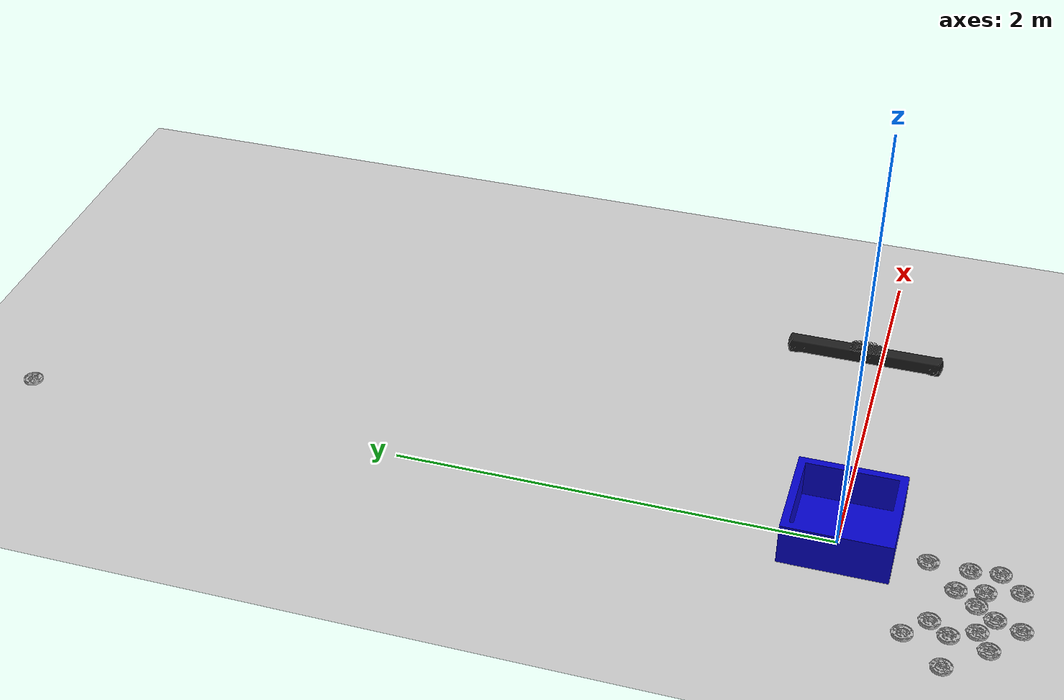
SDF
<sdf version="1.7">
 <world name="default">
  <light name="sun" type="directional">
   <pose>0 0 10 0 -0 0</pose>
   <diffuse>0.8 0.8 0.8 1</diffuse>
   <specular>0.2 0.2 0.2 1</specular>
   <attenuation>
    <range>1000</range>
    <constant>0.9</constant>
    <linear>0.01</linear>
    <quadratic>0.001</quadratic>
   </attenuation>
   <direction>-0.5 0.1 -0.9</direction>
   <spot><inner_angle>0</inner_angle><outer_angle>0</outer_angle><falloff>0</falloff></spot>
  </light>
  <model name="ground_plane">
   <static>1</static>
   <link name="link">
    <collision name="collision">
     <geometry><plane><normal>0 0 1</normal><size>100 100</size></plane></geometry>
     <surface><friction><ode><mu>100</mu><mu2>50</mu2></ode></friction></surface>
    </collision>
    <visual name="visual">
     <cast_shadows>0</cast_shadows>
     <geometry><plane><normal>0 0 1</normal><size>100 100</size></plane></geometry>
     <material>
      <script><uri>file://media/materials/scripts/gazebo.material</uri><name>Gazebo/Grey</name></script>
     </material>
    </visual>
   </link>
  </model>
  <gravity>0 0 -9.8</gravity>
  <magnetic_field>6e-06 2.3e-05 -4.2e-05</magnetic_field>
  <atmosphere type="adiabatic"/>
  <physics type="ode">
   <max_step_size>0.001</max_step_size>
   <real_time_factor>1</real_time_factor>
   <real_time_update_rate>1000</real_time_update_rate>
  </physics>
  <scene><ambient>0.4 0.4 0.4 1</ambient><background>0.7 0.7 0.7 1</background><shadows>1</shadows></scene>
  <spherical_coordinates>
   <surface_model>EARTH_WGS84</surface_model>
   <latitude_deg>0</latitude_deg>
   <longitude_deg>0</longitude_deg>
   <elevation>0</elevation>
   <heading_deg>0</heading_deg>
  </spherical_coordinates>
  <model name="HV8">
   <pose>0.028188 3.84665 0 0 -0 0</pose>
   <static>1</static>
   <link name="HV8">
    <inertial>
     <mass>0.2</mass>
     <inertia><ixx>0.0005</ixx><ixy>0</ixy><ixz>0</ixz><iyy>0.0005</iyy><iyz>0</iyz><izz>0.0005</izz></inertia>
    </inertial>
    <collision name="collishin">
     <geometry><mesh><uri>model://HV8/meshes/HV8_1.stl</uri></mesh></geometry>
    </collision>
    <visual name="visual"><geometry><mesh><uri>model://HV8/meshes/HV8_1.stl</uri></mesh></geometry></visual>
   </link>
  </model>
  <model name="phoxi_camera">
   <joint name="photoneo_center_joint" type="fixed">
    <pose relative_to="__model__">0 0 1 3.14159 1.57079 3.14159</pose>
    <parent>world</parent>
    <child>photoneo_center</child>
   </joint>
   <link name="photoneo_center">
    <pose relative_to="photoneo_center_joint">0 0 0 0 -0 0</pose>
    <inertial>
     <mass>1.1</mass>
     <inertia><ixx>1</ixx><ixy>0</ixy><ixz>0</ixz><iyy>1</iyy><iyz>0</iyz><izz>1</izz></inertia>
    </inertial>
    <collision name="photoneo_center_collision">
     <pose>0 0 0 1.5708 -0 -3.14159</pose>
     <geometry>
      <mesh>
       <scale>0.001 0.001 0.001</scale>
       <uri>/home/ericlab/ros_package/denso_ws/src/denso_run/denso_pkgs/denso_common/denso_descriptions/phoxi_camera_description/meshes/collision/PhoXi_L.c.STL</uri>
      </mesh>
     </geometry>
     <surface><friction><ode><mu>0.2</mu><mu2>0.2</mu2></ode></friction></surface>
    </collision>
    <visual name="photoneo_center_visual">
     <pose>0 0 0 1.5708 -0 -3.14159</pose>
     <geometry>
      <mesh>
       <scale>0.001 0.001 0.001</scale>
       <uri>/home/ericlab/ros_package/denso_ws/src/denso_run/denso_pkgs/denso_common/denso_descriptions/phoxi_camera_description/meshes/visual/PhoXi_L.f.STL</uri>
      </mesh>
     </geometry>
     <material>
      <script><name>Gazebo/Black</name><uri>file://media/materials/scripts/gazebo.material</uri></script>
     </material>
    </visual>
    <sensor name="photoneo_center_sensor" type="depth">
     <always_on>1</always_on>
     <update_rate>30</update_rate>
     <camera>
      <horizontal_fov>1.46782</horizontal_fov>
      <image><format>R8G8B8</format><width>2064</width><height>1544</height></image>
      <clip><near>0.05</near><far>4.5</far></clip>
      <noise><type>gaussian</type><mean>0</mean><stddev>0.005</stddev></noise>
     </camera>
     <plugin name="photoneo_center_sensor_controller" filename="libgazebo_ros_openni_kinect.so">
      <cameraName>photoneo_center/sensor</cameraName>
      <alwaysOn>1</alwaysOn>
      <updateRate>30</updateRate>
      <imageTopicName>image_color</imageTopicName>
      <depthImageTopicName>image_depth</depthImageTopicName>
      <pointCloudTopicName>points</pointCloudTopicName>
      <cameraInfoTopicName>camera_info</cameraInfoTopicName>
      <depthImageCameraInfoTopicName>camera_info</depthImageCameraInfoTopicName>
      <frameName>photoneo_center_optical_frame</frameName>
      <baseline>0.1</baseline>
      <distortion_k1>-0.11862627596824302</distortion_k1>
      <distortion_k2>0.1330449495758574</distortion_k2>
      <distortion_k3>0.0</distortion_k3>
      <distortion_t1>0.0012978747886444077</distortion_t1>
      <distortion_t2>-0.002273816413316873</distortion_t2>
      <focalLength>2293.3324879074394</focalLength>
      <hackBaseline>0.0</hackBaseline>
      <Cx>1041.4935095434566</Cx>
      <Cy>857.6330096952366</Cy>
      <pointCloudCutoff>0.05</pointCloudCutoff>
      <pointCloudCutoffMax>4.5</pointCloudCutoffMax>
      <robotNamespace>/</robotNamespace>
     </plugin>
    </sensor>
    <sensor name="photoneo_center_camera" type="camera">
     <always_on>1</always_on>
     <update_rate>30</update_rate>
     <camera>
      <pose>0.035 -0.275 0.0168 0 -0 0.164934</pose>
      <horizontal_fov>1.46782</horizontal_fov>
      <image><format>R8G8B8</format><width>752</width><height>480</height></image>
      <clip><near>0.05</near><far>4.5</far></clip>
      <noise><type>gaussian</type><mean>0</mean><stddev>0.005</stddev></noise>
     </camera>
     <plugin name="photoneo_center_camera_controller" filename="libgazebo_ros_camera.so">
      <cameraName>photoneo_center/camera</cameraName>
      <alwaysOn>1</alwaysOn>
      <updateRate>30</updateRate>
      <imageTopicName>image_color</imageTopicName>
      <cameraInfoTopicName>camera_info</cameraInfoTopicName>
      <frameName>photoneo_center_camera_frame</frameName>
      <baseline>0.1</baseline>
      <distortion_k1>-0.11862627596824302</distortion_k1>
      <distortion_k2>0.1330449495758574</distortion_k2>
      <distortion_k3>0.0</distortion_k3>
      <distortion_t1>0.0012978747886444077</distortion_t1>
      <distortion_t2>-0.002273816413316873</distortion_t2>
      <focalLength>2293.3324879074394</focalLength>
      <hackBaseline>0.07</hackBaseline>
      <Cx>1041.4935095434566</Cx>
      <Cy>857.6330096952366</Cy>
      <pointCloudCutoff>0.05</pointCloudCutoff>
      <pointCloudCutoffMax>4.5</pointCloudCutoffMax>
      <robotNamespace>/</robotNamespace>
     </plugin>
    </sensor>
   </link>
  </model>
  <model name="object_box">
   <pose>0.047227 -0.005648 0 0 -0 0</pose>
   <static>1</static>
   <link name="object_box">
    <inertial>
     <mass>0.2</mass>
     <inertia><ixx>0.0005</ixx><ixy>0</ixy><ixz>0</ixz><iyy>0.0005</iyy><iyz>0</iyz><izz>0.0005</izz></inertia>
    </inertial>
    <collision name="collision">
     <geometry><mesh><uri>model://object_box/meshed/object_box_kai.dae</uri></mesh></geometry>
    </collision>
    <visual name="visual">
     <geometry><mesh><uri>model://object_box/meshed/object_box_kai.dae</uri></mesh></geometry>
    </visual>
   </link>
  </model>
  <model name="HV8_0">
   <pose>-0.010831 -0.387688 1e-06 -5.8e-05 -1.4e-05 2.4e-05</pose>
   <static>0</static>
   <link name="HV8">
    <inertial>
     <mass>0.2</mass>
     <inertia><ixx>0.0005</ixx><ixy>0</ixy><ixz>0</ixz><iyy>0.0005</iyy><iyz>0</iyz><izz>0.0005</izz></inertia>
    </inertial>
    <collision name="collishin">
     <geometry><mesh><uri>model://HV8/meshes/HV8_1.stl</uri></mesh></geometry>
    </collision>
    <visual name="visual"><geometry><mesh><uri>model://HV8/meshes/HV8_1.stl</uri></mesh></geometry></visual>
   </link>
  </model>
  <model name="HV8_1">
   <pose>-0.376961 -0.629301 2e-06 -4.2e-05 -4.1e-05 2.1e-05</pose>
   <static>0</static>
   <link name="HV8">
    <inertial>
     <mass>0.2</mass>
     <inertia><ixx>0.0005</ixx><ixy>0</ixy><ixz>0</ixz><iyy>0.0005</iyy><iyz>0</iyz><izz>0.0005</izz></inertia>
    </inertial>
    <collision name="collishin">
     <geometry><mesh><uri>model://HV8/meshes/HV8_1.stl</uri></mesh></geometry>
    </collision>
    <visual name="visual"><geometry><mesh><uri>model://HV8/meshes/HV8_1.stl</uri></mesh></geometry></visual>
   </link>
  </model>
  <model name="HV8_2">
   <pose>-0.131177 -0.637828 -0 1e-06 1.6e-05 2e-05</pose>
   <static>0</static>
   <link name="HV8">
    <inertial>
     <mass>0.2</mass>
     <inertia><ixx>0.0005</ixx><ixy>0</ixy><ixz>0</ixz><iyy>0.0005</iyy><iyz>0</iyz><izz>0.0005</izz></inertia>
    </inertial>
    <collision name="collishin">
     <geometry><mesh><uri>model://HV8/meshes/HV8_1.stl</uri></mesh></geometry>
    </collision>
    <visual name="visual"><geometry><mesh><uri>model://HV8/meshes/HV8_1.stl</uri></mesh></geometry></visual>
   </link>
  </model>
  <model name="HV8_3">
   <pose>-0.150112 -0.518257 -3e-06 -1.8e-05 7.7e-05 1.8e-05</pose>
   <static>0</static>
   <link name="HV8">
    <inertial>
     <mass>0.2</mass>
     <inertia><ixx>0.0005</ixx><ixy>0</ixy><ixz>0</ixz><iyy>0.0005</iyy><iyz>0</iyz><izz>0.0005</izz></inertia>
    </inertial>
    <collision name="collishin">
     <geometry><mesh><uri>model://HV8/meshes/HV8_1.stl</uri></mesh></geometry>
    </collision>
    <visual name="visual"><geometry><mesh><uri>model://HV8/meshes/HV8_1.stl</uri></mesh></geometry></visual>
   </link>
  </model>
  <model name="HV8_4">
   <pose>-0.366242 -0.43434 -0 3.3e-05 6e-06 1.7e-05</pose>
   <static>0</static>
   <link name="HV8">
    <inertial>
     <mass>0.2</mass>
     <inertia><ixx>0.0005</ixx><ixy>0</ixy><ixz>0</ixz><iyy>0.0005</iyy><iyz>0</iyz><izz>0.0005</izz></inertia>
    </inertial>
    <collision name="collishin">
     <geometry><mesh><uri>model://HV8/meshes/HV8_1.stl</uri></mesh></geometry>
    </collision>
    <visual name="visual"><geometry><mesh><uri>model://HV8/meshes/HV8_1.stl</uri></mesh></geometry></visual>
   </link>
  </model>
  <model name="HV8_5">
   <pose>-0.223178 -0.610178 -2e-06 -1.1e-05 5.5e-05 1.6e-05</pose>
   <static>0</static>
   <link name="HV8">
    <inertial>
     <mass>0.2</mass>
     <inertia><ixx>0.0005</ixx><ixy>0</ixy><ixz>0</ixz><iyy>0.0005</iyy><iyz>0</iyz><izz>0.0005</izz></inertia>
    </inertial>
    <collision name="collishin">
     <geometry><mesh><uri>model://HV8/meshes/HV8_1.stl</uri></mesh></geometry>
    </collision>
    <visual name="visual"><geometry><mesh><uri>model://HV8/meshes/HV8_1.stl</uri></mesh></geometry></visual>
   </link>
  </model>
  <model name="HV8_6">
   <pose>-0.015086 -0.563951 -2e-06 8e-05 1.5e-05 1.5e-05</pose>
   <static>0</static>
   <link name="HV8">
    <inertial>
     <mass>0.2</mass>
     <inertia><ixx>0.0005</ixx><ixy>0</ixy><ixz>0</ixz><iyy>0.0005</iyy><iyz>0</iyz><izz>0.0005</izz></inertia>
    </inertial>
    <collision name="collishin">
     <geometry><mesh><uri>model://HV8/meshes/HV8_1.stl</uri></mesh></geometry>
    </collision>
    <visual name="visual"><geometry><mesh><uri>model://HV8/meshes/HV8_1.stl</uri></mesh></geometry></visual>
   </link>
  </model>
  <model name="HV8_7">
   <pose>-0.319871 -0.801896 -1e-06 -3.2e-05 2.4e-05 1.4e-05</pose>
   <static>0</static>
   <link name="HV8">
    <inertial>
     <mass>0.2</mass>
     <inertia><ixx>0.0005</ixx><ixy>0</ixy><ixz>0</ixz><iyy>0.0005</iyy><iyz>0</iyz><izz>0.0005</izz></inertia>
    </inertial>
    <collision name="collishin">
     <geometry><mesh><uri>model://HV8/meshes/HV8_1.stl</uri></mesh></geometry>
    </collision>
    <visual name="visual"><geometry><mesh><uri>model://HV8/meshes/HV8_1.stl</uri></mesh></geometry></visual>
   </link>
  </model>
  <model name="HV8_8">
   <pose>-0.471139 -0.684489 2e-06 -4.2e-05 -4.1e-05 1.3e-05</pose>
   <static>0</static>
   <link name="HV8">
    <inertial>
     <mass>0.2</mass>
     <inertia><ixx>0.0005</ixx><ixy>0</ixy><ixz>0</ixz><iyy>0.0005</iyy><iyz>0</iyz><izz>0.0005</izz></inertia>
    </inertial>
    <collision name="collishin">
     <geometry><mesh><uri>model://HV8/meshes/HV8_1.stl</uri></mesh></geometry>
    </collision>
    <visual name="visual"><geometry><mesh><uri>model://HV8/meshes/HV8_1.stl</uri></mesh></geometry></visual>
   </link>
  </model>
  <model name="HV8_9">
   <pose>-0.431248 -0.518148 8e-06 -0.000167 -9e-05 1.2e-05</pose>
   <static>0</static>
   <link name="HV8">
    <inertial>
     <mass>0.2</mass>
     <inertia><ixx>0.0005</ixx><ixy>0</ixy><ixz>0</ixz><iyy>0.0005</iyy><iyz>0</iyz><izz>0.0005</izz></inertia>
    </inertial>
    <collision name="collishin">
     <geometry><mesh><uri>model://HV8/meshes/HV8_1.stl</uri></mesh></geometry>
    </collision>
    <visual name="visual"><geometry><mesh><uri>model://HV8/meshes/HV8_1.stl</uri></mesh></geometry></visual>
   </link>
  </model>
  <model name="HV8_10">
   <pose>-0.615862 -0.511766 -1e-06 -3.6e-05 -3e-06 -0.103045</pose>
   <static>0</static>
   <link name="HV8">
    <inertial>
     <mass>0.2</mass>
     <inertia><ixx>0.0005</ixx><ixy>0</ixy><ixz>0</ixz><iyy>0.0005</iyy><iyz>0</iyz><izz>0.0005</izz></inertia>
    </inertial>
    <collision name="collishin">
     <geometry><mesh><uri>model://HV8/meshes/HV8_1.stl</uri></mesh></geometry>
    </collision>
    <visual name="visual"><geometry><mesh><uri>model://HV8/meshes/HV8_1.stl</uri></mesh></geometry></visual>
   </link>
  </model>
  <model name="HV8_11">
   <pose>-0.285063 -0.691926 -0 1e-06 1.6e-05 1e-05</pose>
   <static>0</static>
   <link name="HV8">
    <inertial>
     <mass>0.2</mass>
     <inertia><ixx>0.0005</ixx><ixy>0</ixy><ixz>0</ixz><iyy>0.0005</iyy><iyz>0</iyz><izz>0.0005</izz></inertia>
    </inertial>
    <collision name="collishin">
     <geometry><mesh><uri>model://HV8/meshes/HV8_1.stl</uri></mesh></geometry>
    </collision>
    <visual name="visual"><geometry><mesh><uri>model://HV8/meshes/HV8_1.stl</uri></mesh></geometry></visual>
   </link>
  </model>
  <model name="HV8_12">
   <pose>-0.089553 -0.782837 -2e-06 0.000104 -1e-06 1e-05</pose>
   <static>0</static>
   <link name="HV8">
    <inertial>
     <mass>0.2</mass>
     <inertia><ixx>0.0005</ixx><ixy>0</ixy><ixz>0</ixz><iyy>0.0005</iyy><iyz>0</iyz><izz>0.0005</izz></inertia>
    </inertial>
    <collision name="collishin">
     <geometry><mesh><uri>model://HV8/meshes/HV8_1.stl</uri></mesh></geometry>
    </collision>
    <visual name="visual"><geometry><mesh><uri>model://HV8/meshes/HV8_1.stl</uri></mesh></geometry></visual>
   </link>
  </model>
  <model name="HV8_13">
   <pose>-0.000629 -0.688786 -1e-06 -3.2e-05 2.4e-05 9e-06</pose>
   <static>0</static>
   <link name="HV8">
    <inertial>
     <mass>0.2</mass>
     <inertia><ixx>0.0005</ixx><ixy>0</ixy><ixz>0</ixz><iyy>0.0005</iyy><iyz>0</iyz><izz>0.0005</izz></inertia>
    </inertial>
    <collision name="collishin">
     <geometry><mesh><uri>model://HV8/meshes/HV8_1.stl</uri></mesh></geometry>
    </collision>
    <visual name="visual"><geometry><mesh><uri>model://HV8/meshes/HV8_1.stl</uri></mesh></geometry></visual>
   </link>
  </model>
  <model name="HV8_14">
   <pose>-0.470154 -0.336488 0 3e-06 9e-06 8e-06</pose>
   <static>0</static>
   <link name="HV8">
    <inertial>
     <mass>0.2</mass>
     <inertia><ixx>0.0005</ixx><ixy>0</ixy><ixz>0</ixz><iyy>0.0005</iyy><iyz>0</iyz><izz>0.0005</izz></inertia>
    </inertial>
    <collision name="collishin">
     <geometry><mesh><uri>model://HV8/meshes/HV8_1.stl</uri></mesh></geometry>
    </collision>
    <visual name="visual"><geometry><mesh><uri>model://HV8/meshes/HV8_1.stl</uri></mesh></geometry></visual>
   </link>
  </model>
 </world>
</sdf>
